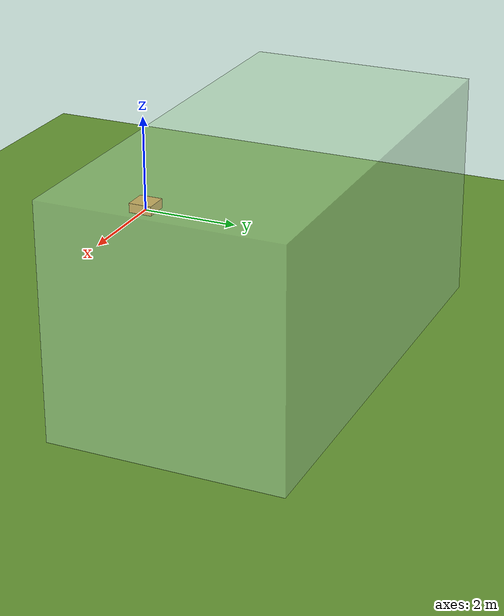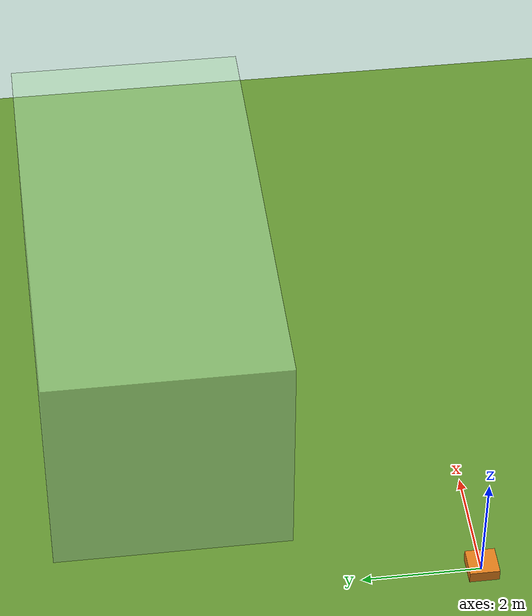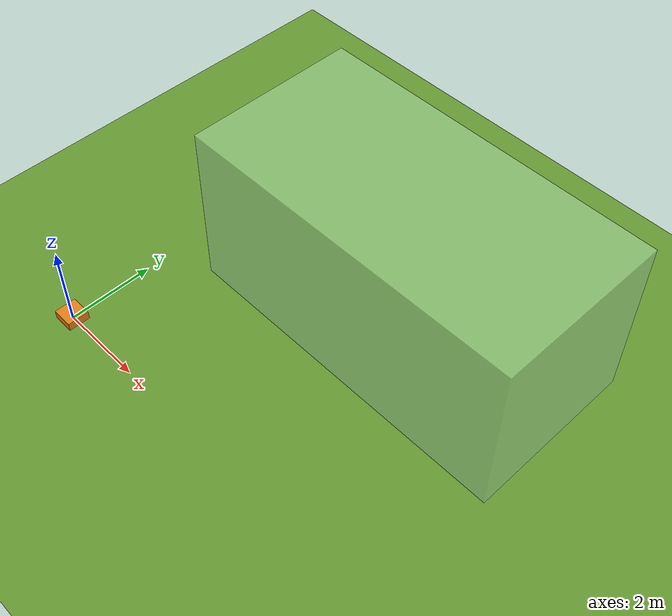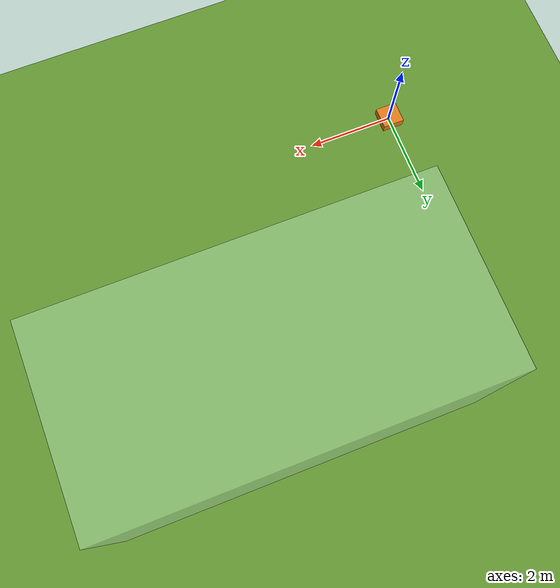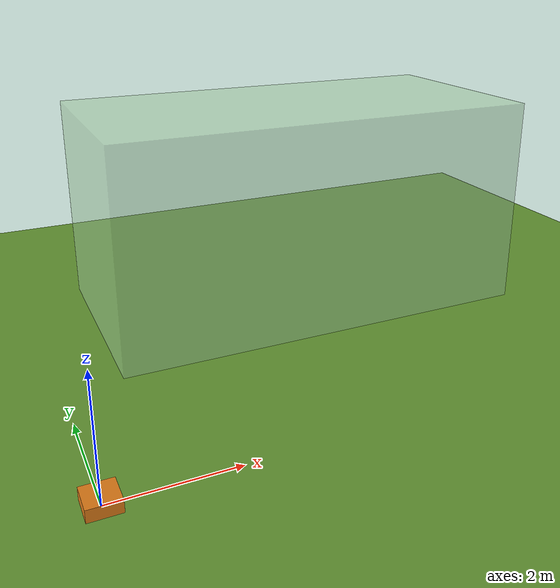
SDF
<?xml version="1.0" ?>
<sdf version="1.8">
  <world name="homestead_site">
    <physics name="default_physics" default="0" type="ode">
      <max_step_size>0.001</max_step_size>
      <real_time_factor>1</real_time_factor>
    </physics>

    <plugin
      filename="gz-sim-physics-system"
      name="gz::sim::systems::Physics">
    </plugin>
    <plugin
      filename="gz-sim-sensors-system"
      name="gz::sim::systems::Sensors">
      <render_engine>ogre2</render_engine>
    </plugin>
    <plugin
      filename="gz-sim-user-commands-system"
      name="gz::sim::systems::UserCommands">
    </plugin>
    <plugin
      filename="gz-sim-scene-broadcaster-system"
      name="gz::sim::systems::SceneBroadcaster">
    </plugin>
    <plugin
      filename="gz-sim-ros2-control-system"
      name="gz::sim::systems::ROS2Control">
    </plugin>

    <light type="directional" name="sun">
      <cast_shadows>true</cast_shadows>
      <pose>0 0 10 0 0 0</pose>
      <diffuse>0.8 0.8 0.8 1</diffuse>
      <specular>0.2 0.2 0.2 1</specular>
      <direction>-0.5 0.1 -0.9</direction>
    </light>

    <!-- Ground plane (30m x 30m field) -->
    <model name="ground_plane">
      <static>true</static>
      <link name="link">
        <collision name="collision">
          <geometry>
            <plane>
              <normal>0 0 1</normal>
              <size>30 30</size>
            </plane>
          </geometry>
        </collision>
        <visual name="visual">
          <geometry>
            <plane>
              <normal>0 0 1</normal>
              <size>30 30</size>
            </plane>
          </geometry>
          <material>
            <ambient>0.4 0.6 0.2 1</ambient>
          </material>
        </visual>
      </link>
    </model>

    <!-- Greenhouse obstacle (simplified box) -->
    <model name="greenhouse_north">
      <static>true</static>
      <pose>5 5 2 0 0 0</pose>
      <link name="link">
        <collision name="collision">
          <geometry>
            <box><size>8 4 4</size></box>
          </geometry>
        </collision>
        <visual name="visual">
          <geometry>
            <box><size>8 4 4</size></box>
          </geometry>
          <material>
            <ambient>0.7 0.9 0.7 0.5</ambient>
          </material>
        </visual>
      </link>
    </model>

    <!-- Docking station -->
    <model name="docking_station">
      <static>true</static>
      <pose>0 0 0.1 0 0 0</pose>
      <link name="link">
        <collision name="collision">
          <geometry>
            <box><size>0.5 0.5 0.2</size></box>
          </geometry>
        </collision>
        <visual name="visual">
          <geometry>
            <box><size>0.5 0.5 0.2</size></box>
          </geometry>
          <material>
            <ambient>0.9 0.5 0.1 1</ambient>
          </material>
        </visual>
      </link>
    </model>
  </world>
</sdf>
